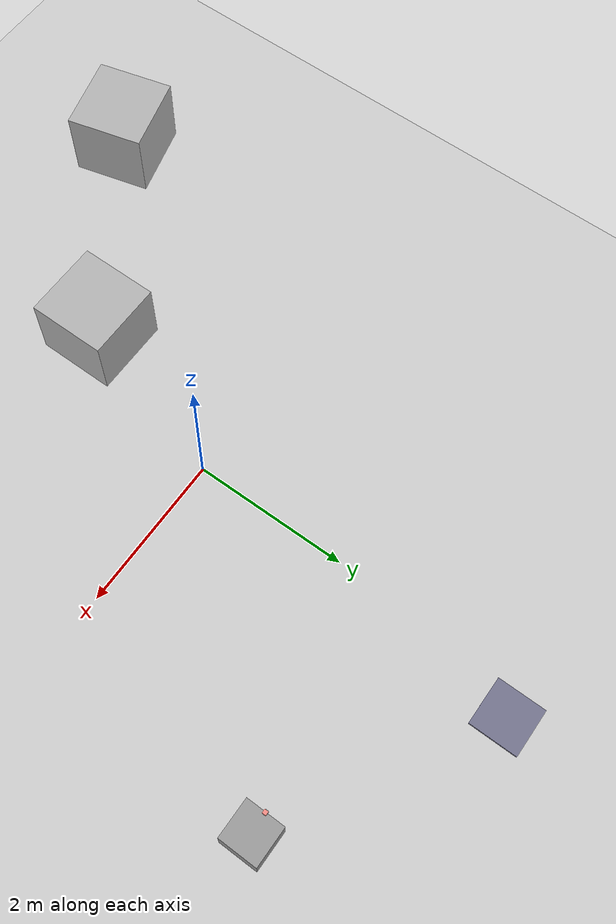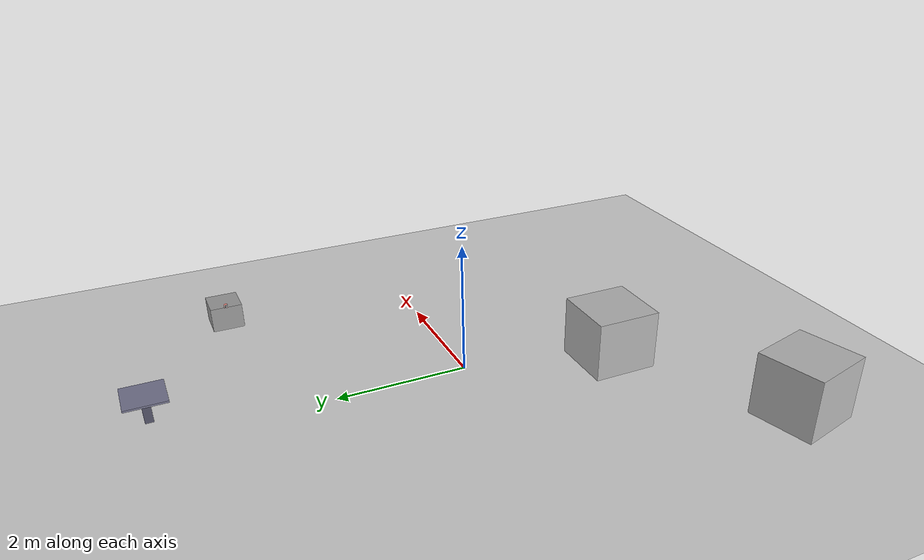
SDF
<sdf version="1.9">
 <world name="empty">
  <physics name="1ms" type="ignored">
   <max_step_size>0.001</max_step_size>
   <real_time_factor>1</real_time_factor>
   <real_time_update_rate>1000</real_time_update_rate>
  </physics>
  <plugin name="gz::sim::systems::Physics" filename="ignition-gazebo-physics-system"/>
  <plugin name="gz::sim::systems::UserCommands" filename="ignition-gazebo-user-commands-system"/>
  <plugin name="gz::sim::systems::SceneBroadcaster" filename="ignition-gazebo-scene-broadcaster-system"/>
  <plugin name="gz::sim::systems::Contact" filename="ignition-gazebo-contact-system"/>
  <plugin name="gz::sim::systems::Sensors" filename="ignition-gazebo-sensors-system">
   <render_engine>ogre2</render_engine>
  </plugin>
  <gravity>0 0 -9.8</gravity>
  <magnetic_field>6e-06 2.3e-05 -4.2e-05</magnetic_field>
  <atmosphere type="adiabatic"/>
  <scene><ambient>0.4 0.4 0.4 1</ambient><background>0.7 0.7 0.7 1</background><shadows>true</shadows></scene>
  <model name="ground_plane">
   <static>true</static>
   <link name="link">
    <collision name="collision">
     <geometry><plane><normal>0 0 1</normal><size>100 100</size></plane></geometry>
    </collision>
    <visual name="visual">
     <geometry><plane><normal>0 0 1</normal><size>100 100</size></plane></geometry>
     <material>
      <ambient>0.8 0.8 0.8 1</ambient>
      <diffuse>0.8 0.8 0.8 1</diffuse>
      <specular>0.8 0.8 0.8 1</specular>
     </material>
    </visual>
    <inertial>
     <mass>1</mass>
     <inertia><ixx>1</ixx><ixy>0</ixy><ixz>0</ixz><iyy>1</iyy><iyz>0</iyz><izz>1</izz></inertia>
    </inertial>
   </link>
  </model>
  <model name="box">
   <pose>-0.679458 -2.14548 0.410989 0 -0 0</pose>
   <link name="box_link">
    <inertial>
     <inertia><ixx>0.16666</ixx><ixy>0</ixy><ixz>0</ixz><iyy>0.16666</iyy><iyz>0</iyz><izz>0.16666</izz></inertia>
     <mass>1</mass>
    </inertial>
    <collision name="box_collision"><geometry><box><size>1 1 1</size></box></geometry></collision>
    <visual name="box_visual">
     <geometry><box><size>1 1 1</size></box></geometry>
     <material>
      <ambient>0.3 0.3 0.3 1</ambient>
      <diffuse>0.7 0.7 0.7 1</diffuse>
      <specular>1 1 1 1</specular>
     </material>
    </visual>
   </link>
   <static>true</static>
  </model>
  <model name="box_0">
   <pose>-3.14557 -3.73531 0.462063 0 -0 1.82423</pose>
   <link name="box_link">
    <inertial>
     <inertia><ixx>0.16666</ixx><ixy>0</ixy><ixz>0</ixz><iyy>0.16666</iyy><iyz>0</iyz><izz>0.16666</izz></inertia>
     <mass>1</mass>
    </inertial>
    <collision name="box_collision"><geometry><box><size>1 1 1</size></box></geometry></collision>
    <visual name="box_visual">
     <geometry><box><size>1 1 1</size></box></geometry>
     <material>
      <ambient>0.3 0.3 0.3 1</ambient>
      <diffuse>0.7 0.7 0.7 1</diffuse>
      <specular>1 1 1 1</specular>
     </material>
    </visual>
   </link>
   <static>true</static>
  </model>
  <model name="PickTable">
   <static>true</static>
   <pose>3.04 3 0.2 0 -0 0</pose>
   <link name="table_link">
    <collision name="table_collision">
     <geometry><box><size>0.5 0.5 0.4</size></box></geometry>
     <surface><friction><ode><mu>0.80000000000000004</mu><mu2>0.80000000000000004</mu2></ode></friction></surface>
    </collision>
    <visual name="table_visual">
     <geometry><box><size>0.5 0.5 0.4</size></box></geometry>
     <material>
      <ambient>0.3 0.3 0.3 1</ambient>
      <diffuse>0.6 0.6 0.6 1</diffuse>
      <specular>0.1 0.1 0.1 1</specular>
     </material>
    </visual>
    <inertial>
     <mass>1</mass>
     <inertia><ixx>1</ixx><ixy>0</ixy><ixz>0</ixz><iyy>1</iyy><iyz>0</iyz><izz>1</izz></inertia>
    </inertial>
   </link>
  </model>
  <model name="PlaceTable">
   <static>true</static>
   <pose>0.5 4.5 0.2 0 -0 0</pose>
   <link name="place_table_link">
    <collision name="place_table_top_collision">
     <pose>0 0 0.275 0 -0 0</pose>
     <geometry><box><size>0.6 0.6 0.03</size></box></geometry>
     <surface><friction><ode><mu>0.8</mu><mu2>0.8</mu2></ode></friction></surface>
    </collision>
    <collision name="place_table_pedestal_collision">
     <pose>0.10 0 0.03 0 -0 0</pose>
     <geometry><box><size>0.12 0.12 0.46</size></box></geometry>
     <surface><friction><ode><mu>0.8</mu><mu2>0.8</mu2></ode></friction></surface>
    </collision>
    <visual name="place_table_top_visual">
     <pose>0 0 0.275 0 -0 0</pose>
     <geometry><box><size>0.6 0.6 0.03</size></box></geometry>
     <material>
      <ambient>0.25 0.25 0.32 1</ambient>
      <diffuse>0.45 0.45 0.55 1</diffuse>
      <specular>0.1 0.1 0.1 1</specular>
     </material>
    </visual>
    <visual name="place_table_pedestal_visual">
     <pose>0.10 0 0.03 0 -0 0</pose>
     <geometry><box><size>0.12 0.12 0.46</size></box></geometry>
     <material>
      <ambient>0.18 0.18 0.24 1</ambient>
      <diffuse>0.32 0.32 0.40 1</diffuse>
      <specular>0.1 0.1 0.1 1</specular>
     </material>
    </visual>
    <inertial>
     <mass>1</mass>
     <inertia><ixx>1</ixx><ixy>0</ixy><ixz>0</ixz><iyy>1</iyy><iyz>0</iyz><izz>1</izz></inertia>
    </inertial>
   </link>
  </model>
  <model name="red_cube">
   <static>false</static>
   <pose>2.8 3 0.425 -0 0 -0</pose>
   <link name="red_cube_link">
    <inertial>
     <mass>0.10000000000000001</mass>
     <inertia>
      <ixx>4.1666699999999999e-05</ixx>
      <ixy>0</ixy>
      <ixz>0</ixz>
      <iyy>4.1666699999999999e-05</iyy>
      <iyz>0</iyz>
      <izz>4.1666699999999999e-05</izz>
     </inertia>
    </inertial>
    <collision name="cube_collision">
     <geometry><box><size>0.05 0.05 0.05</size></box></geometry>
     <surface><friction><ode><mu>0.80000000000000004</mu><mu2>0.80000000000000004</mu2></ode></friction></surface>
    </collision>
    <visual name="cube_visual">
     <geometry><box><size>0.05 0.05 0.05</size></box></geometry>
     <material>
      <ambient>0.85 0.45 0.42 1</ambient>
      <diffuse>0.95 0.55 0.52 1</diffuse>
      <specular>0.1 0.1 0.1 1</specular>
     </material>
    </visual>
    <visual name="aruco_white">
     <pose>-0.026 0 0 0 0 0</pose>
     <geometry><box><size>0.002 0.046 0.046</size></box></geometry>
     <material><ambient>1 1 1 1</ambient><diffuse>1 1 1 1</diffuse></material>
    </visual>
    <visual name="aruco_bg">
     <pose>-0.028 0 0 0 0 0</pose>
     <geometry><box><size>0.002 0.032 0.032</size></box></geometry>
     <material><ambient>0 0 0 1</ambient><diffuse>0.1 0.1 0.1 1</diffuse></material>
    </visual>
    <visual name="aruco_w0">
     <pose>-0.030 0.0080 0.0080 0 0 0</pose>
     <geometry><box><size>0.002 0.0054 0.0054</size></box></geometry>
     <material><ambient>1 1 1 1</ambient><diffuse>1 1 1 1</diffuse><emissive>1 1 1 1</emissive></material>
    </visual>
    <visual name="aruco_w1">
     <pose>-0.030 -0.0027 0.0080 0 0 0</pose>
     <geometry><box><size>0.002 0.0054 0.0054</size></box></geometry>
     <material><ambient>1 1 1 1</ambient><diffuse>1 1 1 1</diffuse><emissive>1 1 1 1</emissive></material>
    </visual>
    <visual name="aruco_w2">
     <pose>-0.030 -0.0080 0.0080 0 0 0</pose>
     <geometry><box><size>0.002 0.0054 0.0054</size></box></geometry>
     <material><ambient>1 1 1 1</ambient><diffuse>1 1 1 1</diffuse><emissive>1 1 1 1</emissive></material>
    </visual>
    <visual name="aruco_w3">
     <pose>-0.030 0.0027 0.0027 0 0 0</pose>
     <geometry><box><size>0.002 0.0054 0.0054</size></box></geometry>
     <material><ambient>1 1 1 1</ambient><diffuse>1 1 1 1</diffuse><emissive>1 1 1 1</emissive></material>
    </visual>
    <visual name="aruco_w4">
     <pose>-0.030 -0.0080 0.0027 0 0 0</pose>
     <geometry><box><size>0.002 0.0054 0.0054</size></box></geometry>
     <material><ambient>1 1 1 1</ambient><diffuse>1 1 1 1</diffuse><emissive>1 1 1 1</emissive></material>
    </visual>
    <visual name="aruco_w5">
     <pose>-0.030 -0.0027 -0.0027 0 0 0</pose>
     <geometry><box><size>0.002 0.0054 0.0054</size></box></geometry>
     <material><ambient>1 1 1 1</ambient><diffuse>1 1 1 1</diffuse><emissive>1 1 1 1</emissive></material>
    </visual>
    <visual name="aruco_w6">
     <pose>-0.030 -0.0080 -0.0027 0 0 0</pose>
     <geometry><box><size>0.002 0.0054 0.0054</size></box></geometry>
     <material><ambient>1 1 1 1</ambient><diffuse>1 1 1 1</diffuse><emissive>1 1 1 1</emissive></material>
    </visual>
    <visual name="aruco_w7">
     <pose>-0.030 -0.0027 -0.0080 0 0 0</pose>
     <geometry><box><size>0.002 0.0054 0.0054</size></box></geometry>
     <material><ambient>1 1 1 1</ambient><diffuse>1 1 1 1</diffuse><emissive>1 1 1 1</emissive></material>
    </visual>
   </link>
  </model>
  <light name="sun" type="directional">
   <pose>0 0 10 0 -0 0</pose>
   <intensity>1</intensity>
   <direction>-0.5 0.1 -0.9</direction>
   <diffuse>0.8 0.8 0.8 1</diffuse>
   <specular>0.2 0.2 0.2 1</specular>
   <attenuation>
    <range>1000</range>
    <linear>0.01</linear>
    <constant>0.90000000000000002</constant>
    <quadratic>0.001</quadratic>
   </attenuation>
   <spot><inner_angle>0</inner_angle><outer_angle>0</outer_angle><falloff>0</falloff></spot>
  </light>
 </world>
</sdf>
